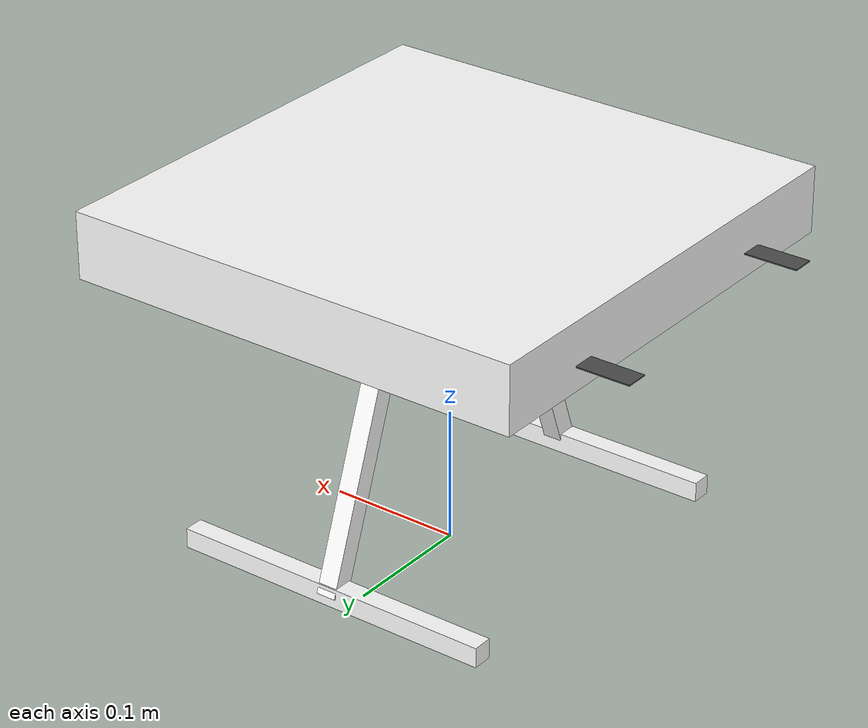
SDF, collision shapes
<?xml version="1.0" encoding="UTF-8"?>
<sdf version='1.9'>
  <model name='race'>
    <pose>0 0 .24 0 0 0</pose>
    <self_collide>false</self_collide>
    <static>false</static>
    <link name="base_link">
      <inertial>
        <mass>0.782</mass>
        <inertia>
          <ixx>1.7665e-3</ixx>
          <ixy>0</ixy>
          <ixz>0</ixz>
          <iyy>1.3766e-3</iyy>
          <iyz>0</iyz>
          <izz>0.0029529424500000004</izz>
        </inertia>
      </inertial>
      <gravity>true</gravity>
      <velocity_decay/>
      <visual name="base_link_visual">
        <pose>0 0 .025 0 0 3.141592654</pose>
        <geometry>
          <mesh>
            <scale>1 1 1</scale>
            <uri>model://x500/meshes/NXP-HGD-CF.dae</uri>
          </mesh>
        </geometry>
      </visual>
      <visual name="5010_motor_base_0">
        <pose>0.174 0.174 .032 0 0 -.45</pose>
        <geometry>
          <mesh>
            <scale>1 1 1</scale>
            <uri>model://x500/meshes/5010Base.dae</uri>
          </mesh>
        </geometry>
      </visual>
      <visual name="5010_motor_base_1">
        <pose>-0.174 0.174 .032 0 0 -.45</pose>
        <geometry>
          <mesh>
            <scale>1 1 1</scale>
            <uri>model://x500/meshes/5010Base.dae</uri>
          </mesh>
        </geometry>
      </visual>
      <visual name="5010_motor_base_2">
        <pose>0.174 -0.174 .032 0 0 -.45</pose>
        <geometry>
          <mesh>
            <scale>1 1 1</scale>
            <uri>model://x500/meshes/5010Base.dae</uri>
          </mesh>
        </geometry>
      </visual>
      <visual name="5010_motor_base_3">
        <pose>-0.174 -0.174 .032 0 0 -.45</pose>
        <geometry>
          <mesh>
            <scale>1 1 1</scale>
            <uri>model://x500/meshes/5010Base.dae</uri>
          </mesh>
        </geometry>
      </visual>
      <visual name="NXP_FMUK66_FRONT">
        <pose>0.047 .001 .043 1 0 1.57</pose>
        <cast_shadows>false</cast_shadows>
        <geometry>
          <plane>
            <normal>0 0 1</normal>
            <size>.013 .007</size>
          </plane>
        </geometry>
        <material>
          <diffuse>1.0 1.0 1.0</diffuse>
          <specular>1.0 1.0 1.0</specular>
          <pbr>
            <metal>
              <albedo_map>model://x500/materials/textures/nxp.png</albedo_map>
            </metal>
          </pbr>
        </material>
      </visual>
      <visual name="NXP_FMUK66_TOP">
        <pose>-0.023 0 .0515 0 0 -1.57</pose>
        <cast_shadows>false</cast_shadows>
        <geometry>
          <plane>
            <normal>0 0 1</normal>
            <size>.013 .007</size>
          </plane>
        </geometry>
        <material>
          <diffuse>1.0 1.0 1.0</diffuse>
          <specular>1.0 1.0 1.0</specular>
          <pbr>
            <metal>
              <albedo_map>model://x500/materials/textures/nxp.png</albedo_map>
            </metal>
          </pbr>
        </material>
      </visual>
      <visual name="RDDRONE_FMUK66_TOP">
        <pose>-.03 0 .0515 0 0 -1.57</pose>
        <cast_shadows>false</cast_shadows>
        <geometry>
          <plane>
            <normal>0 0 1</normal>
            <size>.032 .0034</size>
          </plane>
        </geometry>
        <material>
          <diffuse>1.0 1.0 1.0</diffuse>
          <specular>1.0 1.0 1.0</specular>
          <pbr>
            <metal>
              <albedo_map>model://x500/materials/textures/rd.png</albedo_map>
            </metal>
          </pbr>
        </material>
      </visual>
      <collision name="base_link_collision_0">
        <pose>0 0 .007 0 0 0</pose>
        <geometry>
          <box>
            <size>0.35355339059327373 0.35355339059327373 0.05</size>
          </box>
        </geometry>
        <surface>
          <contact>
            <ode>
              <min_depth>0.001</min_depth>
              <max_vel>0</max_vel>
            </ode>
          </contact>
          <friction>
            <ode/>
          </friction>
        </surface>
      </collision>
      <collision name="base_link_collision_1">
        <pose>0 -0.098 -.123 -0.35 0 0</pose>
        <geometry>
          <box>
            <size>0.015 0.015 0.21</size>
          </box>
        </geometry>
        <surface>
          <contact>
            <ode>
              <min_depth>0.001</min_depth>
              <max_vel>0</max_vel>
            </ode>
          </contact>
          <friction>
            <ode/>
          </friction>
        </surface>
      </collision>
      <collision name="base_link_collision_2">
        <pose>0 0.098 -.123 0.35 0 0</pose>
        <geometry>
          <box>
            <size>0.015 0.015 0.21</size>
          </box>
        </geometry>
        <surface>
          <contact>
            <ode>
              <min_depth>0.001</min_depth>
              <max_vel>0</max_vel>
            </ode>
          </contact>
          <friction>
            <ode/>
          </friction>
        </surface>
      </collision>
      <collision name="base_link_collision_3">
        <pose>0 -0.132 -.2195 0 0 0</pose>
        <geometry>
          <box>
            <size>0.25 0.015 0.015</size>
          </box>
        </geometry>
        <surface>
          <contact>
            <ode>
              <min_depth>0.001</min_depth>
              <max_vel>0</max_vel>
            </ode>
          </contact>
          <friction>
            <ode/>
          </friction>
        </surface>
      </collision>
      <collision name="base_link_collision_4">
        <pose>0 0.132 -.2195 0 0 0</pose>
        <geometry>
          <box>
            <size>0.25 0.015 0.015</size>
          </box>
        </geometry>
        <surface>
          <contact>
            <ode>
              <min_depth>0.001</min_depth>
              <max_vel>0</max_vel>
            </ode>
          </contact>
          <friction>
            <ode/>
          </friction>
        </surface>
      </collision>
      <sensor name="air_pressure_sensor" type="air_pressure">
        <always_on>1</always_on>
        <update_rate>50</update_rate>
        <air_pressure>
          <pressure>
            <noise type="gaussian">
              <mean>0</mean>
              <stddev>0.01</stddev>
            </noise>
          </pressure>
        </air_pressure>
      </sensor>
      <sensor name="imu_sensor" type="imu">
        <always_on>1</always_on>
        <update_rate>400</update_rate>
      </sensor>
    </link>
    <link name="rotor_0">
      <gravity>true</gravity>
      <self_collide>false</self_collide>
      <velocity_decay/>
      <pose>0.0775 -0.0981 0.0 0 0 0</pose>
      <inertial>
          <mass>0.0001</mass>
          <inertia>
            <ixx>1e-10</ixx>
            <iyy>1e-10</iyy>
            <izz>1e-10</izz>
          </inertia>
        </inertial>
      <visual name="rotor_0_visual">
        <pose>-0.022 -0.14638461538461536 -0.016 0 0 0</pose>
        <geometry>
          <mesh>
            <scale>0.8461538461538461 0.8461538461538461 0.8461538461538461</scale>
            <uri>model://x500/meshes/1345_prop_ccw.stl</uri>
          </mesh>
        </geometry>
        <material>
          <script>
            <name>Gazebo/DarkGrey</name>
            <uri>file://media/materials/scripts/gazebo.material</uri>
          </script>
        </material>
      </visual>
      <visual name="rotor_0_visual_motor_bell">
        <pose>0 0 -.032 0 0 0</pose>
        <geometry>
          <mesh>
            <scale>1 1 1</scale>
            <uri>model://x500/meshes/5010Bell.dae</uri>
          </mesh>
        </geometry>
      </visual>
      <collision name="rotor_0_collision">
        <pose>0 0 0 0 0 0 </pose>
        <geometry>
          <box>
            <size>0.2792307692307692 0.016923076923076923 0.0008461538461538462</size>
          </box>
        </geometry>
        <surface>
          <contact>
            <ode>
              <min_depth>0.001</min_depth>
              <max_vel>0</max_vel>
            </ode>
          </contact>
          <friction>
            <ode/>
          </friction>
        </surface>
      </collision>
    </link>
    <joint name="rotor_0_joint" type="revolute">
      <parent>base_link</parent>
      <child>rotor_0</child>
      <axis>
        <xyz>0 0 1</xyz>
        <limit>
          <lower>-1e+16</lower>
          <upper>1e+16</upper>
        </limit>
        <dynamics>
          <spring_reference>0</spring_reference>
          <spring_stiffness>0</spring_stiffness>
        </dynamics>
      </axis>
    </joint>
    <link name="rotor_1">
      <gravity>true</gravity>
      <self_collide>false</self_collide>
      <velocity_decay/>
      <pose>-0.0775 0.0981 0.0 0 0 0</pose>
      <inertial>
          <mass>0.0001</mass>
          <inertia>
            <ixx>1e-10</ixx>
            <iyy>1e-10</iyy>
            <izz>1e-10</izz>
          </inertia>
        </inertial>
      <visual name="rotor_1_visual">
        <pose>-0.022 -0.14638461538461536 -0.016 0 0 0</pose>
        <geometry>
          <mesh>
            <scale>0.8461538461538461 0.8461538461538461 0.8461538461538461</scale>
            <uri>model://x500/meshes/1345_prop_ccw.stl</uri>
          </mesh>
        </geometry>
        <material>
          <script>
            <name>Gazebo/DarkGrey</name>
            <uri>file://media/materials/scripts/gazebo.material</uri>
          </script>
        </material>
      </visual>
      <visual name="rotor_1_visual_motor_top">
        <pose>0 0 -.032 0 0 0</pose>
        <geometry>
          <mesh>
            <scale>1 1 1</scale>
            <uri>model://x500/meshes/5010Bell.dae</uri>
          </mesh>
        </geometry>
      </visual>
      <collision name="rotor_1_collision">
        <pose>0 0 0 0 0 0 </pose>
        <geometry>
          <box>
            <size>0.2792307692307692 0.016923076923076923 0.0008461538461538462</size>
          </box>
        </geometry>
        <surface>
          <contact>
            <ode>
              <min_depth>0.001</min_depth>
              <max_vel>0</max_vel>
            </ode>
          </contact>
          <friction>
            <ode/>
          </friction>
        </surface>
      </collision>
    </link>
    <joint name="rotor_1_joint" type="revolute">
      <parent>base_link</parent>
      <child>rotor_1</child>
      <axis>
        <xyz>0 0 1</xyz>
        <limit>
          <lower>-1e+16</lower>
          <upper>1e+16</upper>
        </limit>
        <dynamics>
          <spring_reference>0</spring_reference>
          <spring_stiffness>0</spring_stiffness>
        </dynamics>
      </axis>
    </joint>
    <link name="rotor_2">
      <gravity>true</gravity>
      <self_collide>false</self_collide>
      <velocity_decay/>
      <pose>0.0775 0.0981 0.0 0 0 0</pose>
      <inertial>
          <mass>0.0001</mass>
          <inertia>
            <ixx>1e-10</ixx>
            <iyy>1e-10</iyy>
            <izz>1e-10</izz>
          </inertia>
        </inertial>
      <visual name="rotor_2_visual">
        <pose>-0.022 -0.14638461538461536 -0.016 0 0 0</pose>
        <geometry>
          <mesh>
            <scale>0.8461538461538461 0.8461538461538461 0.8461538461538461</scale>
            <uri>model://x500/meshes/1345_prop_cw.stl</uri>
          </mesh>
        </geometry>
        <material>
          <script>
            <name>Gazebo/DarkGrey</name>
            <uri>file://media/materials/scripts/gazebo.material</uri>
          </script>
        </material>
      </visual>
      <visual name="rotor_2_visual_motor_top">
        <pose>0 0 -.032 0 0 0</pose>
        <geometry>
          <mesh>
            <scale>1 1 1</scale>
            <uri>model://x500/meshes/5010Bell.dae</uri>
          </mesh>
        </geometry>
      </visual>
      <collision name="rotor_2_collision">
        <pose>0 0 0 0 0 0 </pose>
        <geometry>
          <box>
            <size>0.2792307692307692 0.016923076923076923 0.0008461538461538462</size>
          </box>
        </geometry>
        <surface>
          <contact>
            <ode>
              <min_depth>0.001</min_depth>
              <max_vel>0</max_vel>
            </ode>
          </contact>
          <friction>
            <ode/>
          </friction>
        </surface>
      </collision>
    </link>
    <joint name="rotor_2_joint" type="revolute">
      <parent>base_link</parent>
      <child>rotor_2</child>
      <axis>
        <xyz>0 0 1</xyz>
        <limit>
          <lower>-1e+16</lower>
          <upper>1e+16</upper>
        </limit>
        <dynamics>
          <spring_reference>0</spring_reference>
          <spring_stiffness>0</spring_stiffness>
        </dynamics>
      </axis>
    </joint>
    <link name="rotor_3">
      <gravity>true</gravity>
      <self_collide>false</self_collide>
      <velocity_decay/>
      <pose>-0.0775 -0.0981 0.0 0 0 0</pose>
      <inertial>
          <mass>0.0001</mass>
          <inertia>
            <ixx>1e-10</ixx>
            <iyy>1e-10</iyy>
            <izz>1e-10</izz>
          </inertia>
        </inertial>
      <visual name="rotor_3_visual">
        <pose>-0.022 -0.14638461538461536 -0.016 0 0 0</pose>
        <geometry>
          <mesh>
            <scale>0.8461538461538461 0.8461538461538461 0.8461538461538461</scale>
            <uri>model://x500/meshes/1345_prop_cw.stl</uri>
          </mesh>
        </geometry>
        <material>
          <script>
            <name>Gazebo/DarkGrey</name>
            <uri>file://media/materials/scripts/gazebo.material</uri>
          </script>
        </material>
      </visual>
      <visual name="rotor_3_visual_motor_top">
        <pose>0 0 -.032 0 0 0</pose>
        <geometry>
          <mesh>
            <scale>1 1 1</scale>
            <uri>model://x500/meshes/5010Bell.dae</uri>
          </mesh>
        </geometry>
      </visual>
      <collision name="rotor_3_collision">
        <pose>0 0 0 0 0 0 </pose>
        <geometry>
          <box>
            <size>0.2792307692307692 0.016923076923076923 0.0008461538461538462</size>
          </box>
        </geometry>
        <surface>
          <contact>
            <ode>
              <min_depth>0.001</min_depth>
              <max_vel>0</max_vel>
            </ode>
          </contact>
          <friction>
            <ode/>
          </friction>
        </surface>
      </collision>
    </link>
    <joint name="rotor_3_joint" type="revolute">
      <parent>base_link</parent>
      <child>rotor_3</child>
      <axis>
        <xyz>0 0 1</xyz>
        <limit>
          <lower>-1e+16</lower>
          <upper>1e+16</upper>
        </limit>
        <dynamics>
          <spring_reference>0</spring_reference>
          <spring_stiffness>0</spring_stiffness>
        </dynamics>
      </axis>
    </joint>
   <plugin filename="gz-sim-multicopter-motor-model-system" name="gz::sim::systems::MulticopterMotorModel">
      <jointName>rotor_0_joint</jointName>
      <linkName>rotor_0</linkName>
      <motorNumber>0</motorNumber>
      <turningDirection>ccw</turningDirection>
      <timeConstantUp>0.033</timeConstantUp>
      <timeConstantDown>0.033</timeConstantDown>
      <maxRotVelocity>1000.0</maxRotVelocity>
      <motorConstant>7.55e-6</motorConstant>
      <momentConstant>0.006</momentConstant>
      <commandSubTopic>command/motor_speed</commandSubTopic>
      <rotorDragCoefficient>8.06428e-05</rotorDragCoefficient>
      <rollingMomentCoefficient>1e-06</rollingMomentCoefficient>
      <rotorVelocitySlowdownSim>10</rotorVelocitySlowdownSim>
      <motorType>velocity</motorType>
    </plugin>
    <plugin filename="gz-sim-multicopter-motor-model-system" name="gz::sim::systems::MulticopterMotorModel">
      <jointName>rotor_1_joint</jointName>
      <linkName>rotor_1</linkName>
      <motorNumber>1</motorNumber>
      <turningDirection>ccw</turningDirection>
      <timeConstantUp>0.033</timeConstantUp>
      <timeConstantDown>0.033</timeConstantDown>
      <maxRotVelocity>1000.0</maxRotVelocity>
      <motorConstant>7.55e-6</motorConstant>
      <momentConstant>0.006</momentConstant>
      <commandSubTopic>command/motor_speed</commandSubTopic>
      <rotorDragCoefficient>8.06428e-05</rotorDragCoefficient>
      <rollingMomentCoefficient>1e-06</rollingMomentCoefficient>
      <rotorVelocitySlowdownSim>10</rotorVelocitySlowdownSim>
      <motorType>velocity</motorType>
    </plugin>
    <plugin filename="gz-sim-multicopter-motor-model-system" name="gz::sim::systems::MulticopterMotorModel">
      <jointName>rotor_2_joint</jointName>
      <linkName>rotor_2</linkName>
      <motorNumber>2</motorNumber>
      <turningDirection>cw</turningDirection>
      <timeConstantUp>0.033</timeConstantUp>
      <timeConstantDown>0.033</timeConstantDown>
      <maxRotVelocity>1000.0</maxRotVelocity>
      <motorConstant>7.55e-6</motorConstant>
      <momentConstant>0.006</momentConstant>
      <commandSubTopic>command/motor_speed</commandSubTopic>
      <rotorDragCoefficient>8.06428e-05</rotorDragCoefficient>
      <rollingMomentCoefficient>1e-06</rollingMomentCoefficient>
      <rotorVelocitySlowdownSim>10</rotorVelocitySlowdownSim>
      <motorType>velocity</motorType>
    </plugin>
    <plugin filename="gz-sim-multicopter-motor-model-system" name="gz::sim::systems::MulticopterMotorModel">
      <jointName>rotor_3_joint</jointName>
      <linkName>rotor_3</linkName>
      <motorNumber>3</motorNumber>
      <turningDirection>cw</turningDirection>
      <timeConstantUp>0.033</timeConstantUp>
      <timeConstantDown>0.033</timeConstantDown>
      <maxRotVelocity>1000.0</maxRotVelocity>
      <motorConstant>7.55e-6</motorConstant>
      <momentConstant>0.006</momentConstant>
      <commandSubTopic>command/motor_speed</commandSubTopic>
      <rotorDragCoefficient>8.06428e-05</rotorDragCoefficient>
      <rollingMomentCoefficient>1e-06</rollingMomentCoefficient>
      <rotorVelocitySlowdownSim>10</rotorVelocitySlowdownSim>
      <motorType>velocity</motorType>
    </plugin>
  </model>
</sdf>
